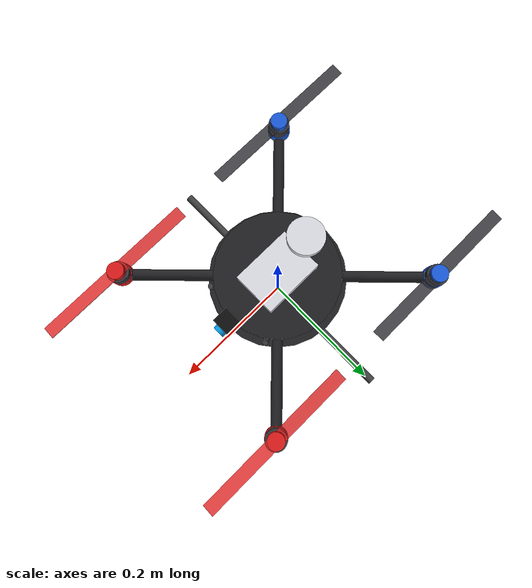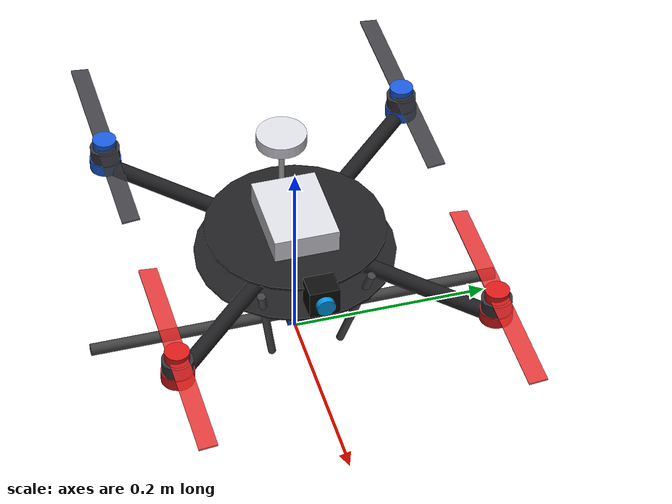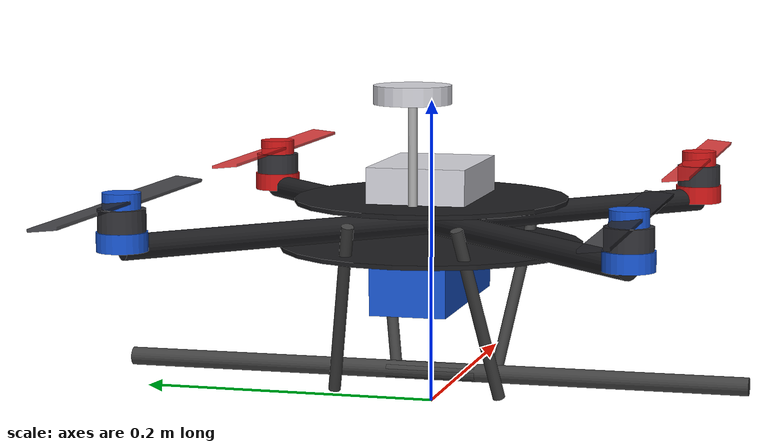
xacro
<?xml version="1.0"?>
<robot name="quadrotor_uav" xmlns:xacro="http://www.ros.org/wiki/xacro">

  <!-- Include materials and gazebo properties -->
  <xacro:include filename="quadrotor_materials.xacro" />

  <!-- Quadrotor Physical Properties -->
  <xacro:property name="arm_length" value="0.22" />
  <xacro:property name="arm_angle" value="${pi/4}" />
  <xacro:property name="body_mass" value="1.20" />
  <xacro:property name="motor_mass" value="0.06" />
  <xacro:property name="rotor_mass" value="0.015" />
  <xacro:property name="prop_radius" value="0.12" />

  <!-- Base footprint: Ground projection -->
  <link name="base_footprint"/>

  <joint name="base_footprint_joint" type="fixed">
    <parent link="base_footprint"/>
    <child link="base_link"/>
    <origin xyz="0 0 0.12" rpy="0 0 0"/>
  </joint>

  <!-- Base Link: Central airframe -->
  <link name="base_link">
    <!-- Inertial properties of main body -->
    <inertial>
      <mass value="${body_mass}"/>
      <origin xyz="0 0 0" rpy="0 0 0"/>
      <inertia ixx="0.014" ixy="0.0" ixz="0.0" iyy="0.014" iyz="0.0" izz="0.025"/>
    </inertial>

    <!-- Lower center carbon plate -->
    <visual>
      <origin xyz="0 0 -0.015" rpy="0 0 0"/>
      <geometry>
        <cylinder radius="0.10" length="0.003"/>
      </geometry>
      <material name="carbon_fiber"/>
    </visual>
    <collision>
      <origin xyz="0 0 0" rpy="0 0 0"/>
      <geometry>
        <box size="0.20 0.20 0.08"/>
      </geometry>
    </collision>

    <!-- Upper center carbon plate -->
    <visual>
      <origin xyz="0 0 0.015" rpy="0 0 0"/>
      <geometry>
        <cylinder radius="0.09" length="0.003"/>
      </geometry>
      <material name="carbon_fiber"/>
    </visual>

    <!-- Flight Controller / Avionics Canopy -->
    <visual>
      <origin xyz="0 0 0.028" rpy="0 0 0"/>
      <geometry>
        <box size="0.09 0.065 0.024"/>
      </geometry>
      <material name="chassis_top"/>
    </visual>

    <!-- LiPo Battery Pack (mounted under frame) -->
    <visual>
      <origin xyz="0 0 -0.035" rpy="0 0 0"/>
      <geometry>
        <box size="0.13 0.05 0.035"/>
      </geometry>
      <material name="anodized_blue"/>
    </visual>

    <!-- FPV Camera Mount -->
    <visual>
      <origin xyz="0.095 0 0.01" rpy="0 0 0"/>
      <geometry>
        <box size="0.025 0.03 0.03"/>
      </geometry>
      <material name="camera_body"/>
    </visual>

    <!-- FPV Camera Lens -->
    <visual>
      <origin xyz="0.11 0 0.01" rpy="0 ${pi/2} 0"/>
      <geometry>
        <cylinder radius="0.009" length="0.008"/>
      </geometry>
      <material name="camera_lens"/>
    </visual>

    <!-- GPS Antenna Mast -->
    <visual>
      <origin xyz="-0.05 0 0.05" rpy="0 0 0"/>
      <geometry>
        <cylinder radius="0.003" length="0.07"/>
      </geometry>
      <material name="gps_mast"/>
    </visual>
    <visual>
      <origin xyz="-0.05 0 0.088" rpy="0 0 0"/>
      <geometry>
        <cylinder radius="0.025" length="0.012"/>
      </geometry>
      <material name="chassis_top"/>
    </visual>
  </link>

  <!-- Landing Gear: Left Skid -->
  <link name="landing_skid_left">
    <visual>
      <origin xyz="0 0 0" rpy="${pi/2} 0 0"/>
      <geometry>
        <cylinder radius="0.006" length="0.24"/>
      </geometry>
      <material name="landing_skid"/>
    </visual>
    <collision>
      <origin xyz="0 0 0" rpy="${pi/2} 0 0"/>
      <geometry>
        <cylinder radius="0.006" length="0.24"/>
      </geometry>
    </collision>
  </link>

  <joint name="landing_skid_left_joint" type="fixed">
    <parent link="base_link"/>
    <child link="landing_skid_left"/>
    <origin xyz="0 0.09 -0.10" rpy="0 0 0"/>
  </joint>

  <!-- Landing Gear: Right Skid -->
  <link name="landing_skid_right">
    <visual>
      <origin xyz="0 0 0" rpy="${pi/2} 0 0"/>
      <geometry>
        <cylinder radius="0.006" length="0.24"/>
      </geometry>
      <material name="landing_skid"/>
    </visual>
    <collision>
      <origin xyz="0 0 0" rpy="${pi/2} 0 0"/>
      <geometry>
        <cylinder radius="0.006" length="0.24"/>
      </geometry>
    </collision>
  </link>

  <joint name="landing_skid_right_joint" type="fixed">
    <parent link="base_link"/>
    <child link="landing_skid_right"/>
    <origin xyz="0 -0.09 -0.10" rpy="0 0 0"/>
  </joint>

  <!-- Left Skid Struts -->
  <link name="skid_struts_left">
    <visual>
      <origin xyz="0.06 0.045 -0.05" rpy="0 0.35 0.5"/>
      <geometry><cylinder radius="0.004" length="0.12"/></geometry>
      <material name="landing_skid"/>
    </visual>
    <visual>
      <origin xyz="-0.06 0.045 -0.05" rpy="0 -0.35 0.5"/>
      <geometry><cylinder radius="0.004" length="0.12"/></geometry>
      <material name="landing_skid"/>
    </visual>
  </link>
  <joint name="skid_struts_left_joint" type="fixed">
    <parent link="base_link"/>
    <child link="skid_struts_left"/>
    <origin xyz="0 0 0" rpy="0 0 0"/>
  </joint>

  <!-- Right Skid Struts -->
  <link name="skid_struts_right">
    <visual>
      <origin xyz="0.06 -0.045 -0.05" rpy="0 0.35 -0.5"/>
      <geometry><cylinder radius="0.004" length="0.12"/></geometry>
      <material name="landing_skid"/>
    </visual>
    <visual>
      <origin xyz="-0.06 -0.045 -0.05" rpy="0 -0.35 -0.5"/>
      <geometry><cylinder radius="0.004" length="0.12"/></geometry>
      <material name="landing_skid"/>
    </visual>
  </link>
  <joint name="skid_struts_right_joint" type="fixed">
    <parent link="base_link"/>
    <child link="skid_struts_right"/>
    <origin xyz="0 0 0" rpy="0 0 0"/>
  </joint>

  <!-- Macro for Arm, Motor and Propeller assembly -->
  <xacro:macro name="quad_arm" params="id x y angle arm_color prop_color">
    <!-- Arm Link -->
    <link name="arm_${id}">
      <inertial>
        <mass value="0.04"/>
        <origin xyz="${arm_length*cos(angle)/2} ${arm_length*sin(angle)/2} 0" rpy="0 0 0"/>
        <inertia ixx="0.0001" ixy="0" ixz="0" iyy="0.0003" iyz="0" izz="0.0003"/>
      </inertial>
      <!-- Tubular carbon arm tube -->
      <visual>
        <origin xyz="${arm_length*cos(angle)/2} ${arm_length*sin(angle)/2} 0" rpy="${pi/2} 0 ${angle - pi/2}"/>
        <geometry>
          <cylinder radius="0.008" length="${arm_length}"/>
        </geometry>
        <material name="carbon_fiber"/>
      </visual>
      <!-- Motor mount clamp -->
      <visual>
        <origin xyz="${arm_length*cos(angle)} ${arm_length*sin(angle)} 0.004" rpy="0 0 0"/>
        <geometry>
          <cylinder radius="0.016" length="0.012"/>
        </geometry>
        <material name="${arm_color}"/>
      </visual>
      <!-- Brushless motor stator -->
      <visual>
        <origin xyz="${arm_length*cos(angle)} ${arm_length*sin(angle)} 0.016" rpy="0 0 0"/>
        <geometry>
          <cylinder radius="0.015" length="0.016"/>
        </geometry>
        <material name="motor_bell"/>
      </visual>
      <collision>
        <origin xyz="${arm_length*cos(angle)} ${arm_length*sin(angle)} 0.016" rpy="0 0 0"/>
        <geometry>
          <cylinder radius="0.016" length="0.035"/>
        </geometry>
      </collision>
    </link>

    <joint name="arm_${id}_joint" type="fixed">
      <parent link="base_link"/>
      <child link="arm_${id}"/>
      <origin xyz="0 0 0" rpy="0 0 0"/>
    </joint>

    <!-- Propeller Rotor Link -->
    <link name="rotor_${id}">
      <inertial>
        <mass value="${rotor_mass}"/>
        <origin xyz="0 0 0" rpy="0 0 0"/>
        <inertia ixx="0.00002" ixy="0" ixz="0" iyy="0.00002" iyz="0" izz="0.00004"/>
      </inertial>
      <!-- Central prop hub -->
      <visual>
        <origin xyz="0 0 0" rpy="0 0 0"/>
        <geometry>
          <cylinder radius="0.012" length="0.012"/>
        </geometry>
        <material name="${arm_color}"/>
      </visual>
      <!-- Propeller Blade 1 -->
      <visual>
        <origin xyz="${prop_radius/2} 0 0" rpy="0.1 0 0"/>
        <geometry>
          <box size="${prop_radius} 0.018 0.002"/>
        </geometry>
        <material name="${prop_color}"/>
      </visual>
      <!-- Propeller Blade 2 -->
      <visual>
        <origin xyz="-${prop_radius/2} 0 0" rpy="-0.1 0 0"/>
        <geometry>
          <box size="${prop_radius} 0.018 0.002"/>
        </geometry>
        <material name="${prop_color}"/>
      </visual>
      <collision>
        <origin xyz="0 0 0" rpy="0 0 0"/>
        <geometry>
          <cylinder radius="${prop_radius}" length="0.015"/>
        </geometry>
      </collision>
    </link>

    <!-- Continuous joint allowing motor spinning -->
    <joint name="rotor_${id}_joint" type="continuous">
      <parent link="arm_${id}"/>
      <child link="rotor_${id}"/>
      <origin xyz="${arm_length*cos(angle)} ${arm_length*sin(angle)} 0.028" rpy="0 0 0"/>
      <axis xyz="0 0 1"/>
      <limit effort="10.0" velocity="250.0"/>
      <dynamics damping="0.003" friction="0.002"/>
    </joint>
  </xacro:macro>

  <!-- Instantiate 4 Quadrotor Arms & Rotors (X-Configuration) -->
  <!-- Motor 0: Front-Right (+X, -Y) -> Red Propeller -->
  <xacro:quad_arm id="0" x="${arm_length}" y="-${arm_length}" angle="-0.785398" arm_color="anodized_red" prop_color="propeller_red"/>

  <!-- Motor 1: Front-Left (+X, +Y) -> Red Propeller -->
  <xacro:quad_arm id="1" x="${arm_length}" y="${arm_length}" angle="0.785398" arm_color="anodized_red" prop_color="propeller_red"/>

  <!-- Motor 2: Rear-Left (-X, +Y) -> Black Propeller -->
  <xacro:quad_arm id="2" x="-${arm_length}" y="${arm_length}" angle="2.35619" arm_color="anodized_blue" prop_color="propeller_black"/>

  <!-- Motor 3: Rear-Right (-X, -Y) -> Black Propeller -->
  <xacro:quad_arm id="3" x="-${arm_length}" y="-${arm_length}" angle="-2.35619" arm_color="anodized_blue" prop_color="propeller_black"/>

  <!-- IMU Sensor Link -->
  <link name="imu_link"/>
  <joint name="imu_joint" type="fixed">
    <parent link="base_link"/>
    <child link="imu_link"/>
    <origin xyz="0 0 0.01" rpy="0 0 0"/>
  </joint>

  <!-- Gazebo Plugin for Propeller Joint Spinning Animation -->
  <gazebo>
    <plugin name="gazebo_ros_joint_pose_trajectory" filename="libgazebo_ros_joint_pose_trajectory.so">
      <ros>
        <namespace>/uav</namespace>
        <remapping>set_joint_trajectory:=joint_trajectory</remapping>
      </ros>
      <update_rate>50</update_rate>
    </plugin>
  </gazebo>

</robot>

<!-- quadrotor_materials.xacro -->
<robot xmlns:xacro="http://www.ros.org/wiki/xacro">

  <material name="carbon_fiber">
    <color rgba="0.12 0.12 0.13 1.0"/>
  </material>

  <material name="chassis_top">
    <color rgba="0.85 0.85 0.88 1.0"/>
  </material>

  <material name="motor_bell">
    <color rgba="0.2 0.2 0.22 1.0"/>
  </material>

  <material name="anodized_red">
    <color rgba="0.85 0.1 0.1 1.0"/>
  </material>

  <material name="anodized_blue">
    <color rgba="0.1 0.35 0.85 1.0"/>
  </material>

  <material name="propeller_red">
    <color rgba="0.9 0.15 0.15 0.85"/>
  </material>

  <material name="propeller_black">
    <color rgba="0.18 0.18 0.2 0.85"/>
  </material>

  <material name="landing_skid">
    <color rgba="0.25 0.25 0.25 1.0"/>
  </material>

  <material name="camera_body">
    <color rgba="0.05 0.05 0.05 1.0"/>
  </material>

  <material name="camera_lens">
    <color rgba="0.0 0.6 0.9 0.9"/>
  </material>

  <material name="gps_mast">
    <color rgba="0.7 0.7 0.7 1.0"/>
  </material>

  <!-- Gazebo Material References & Gravity Coupling -->
  <gazebo reference="base_link">
    <material>Gazebo/DarkGrey</material>
    <gravity>0</gravity>
  </gazebo>

  <gazebo reference="rotor_0">
    <material>Gazebo/Red</material>
  </gazebo>
  <gazebo reference="rotor_1">
    <material>Gazebo/Red</material>
  </gazebo>
  <gazebo reference="rotor_2">
    <material>Gazebo/Blue</material>
  </gazebo>
  <gazebo reference="rotor_3">
    <material>Gazebo/Blue</material>
  </gazebo>
  <gazebo reference="landing_gear">
    <material>Gazebo/Grey</material>
  </gazebo>

</robot>
